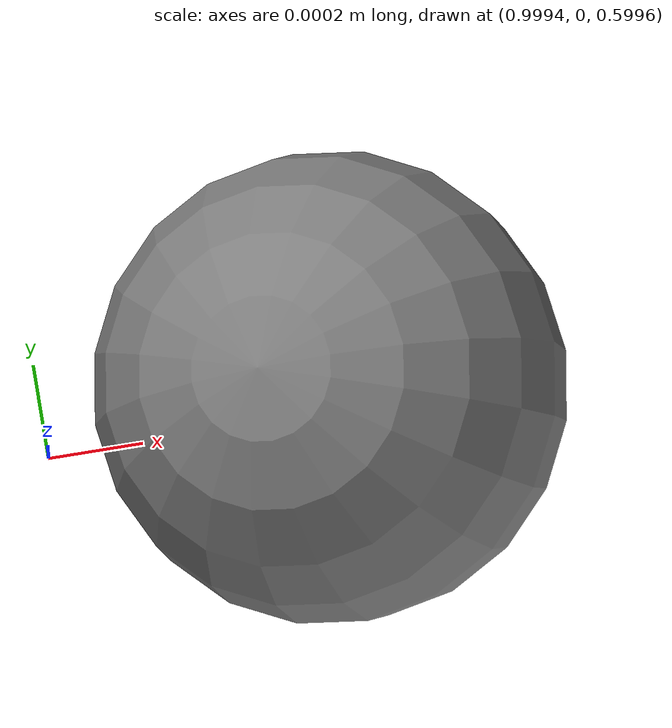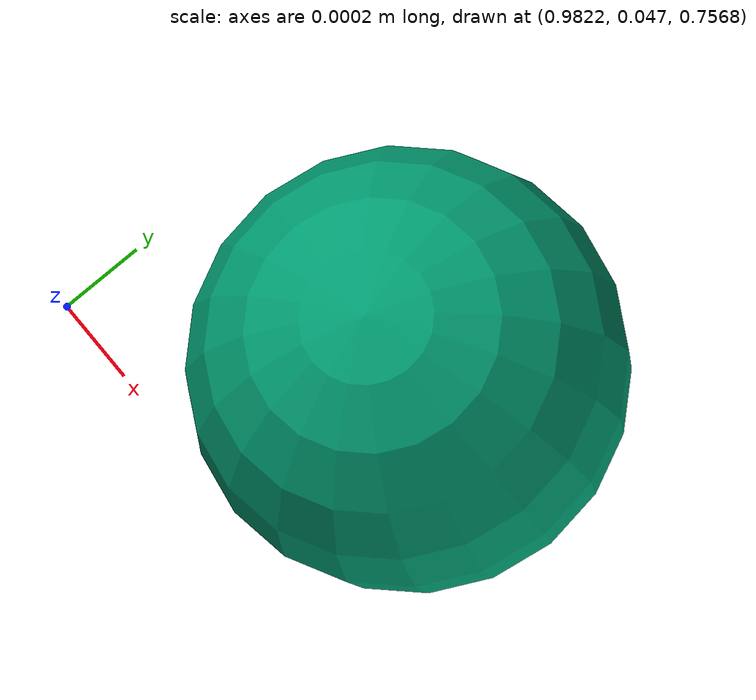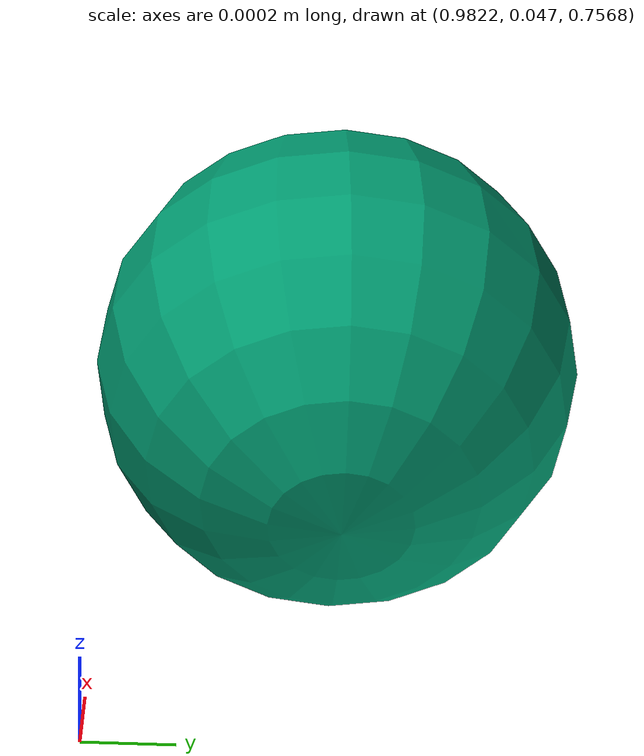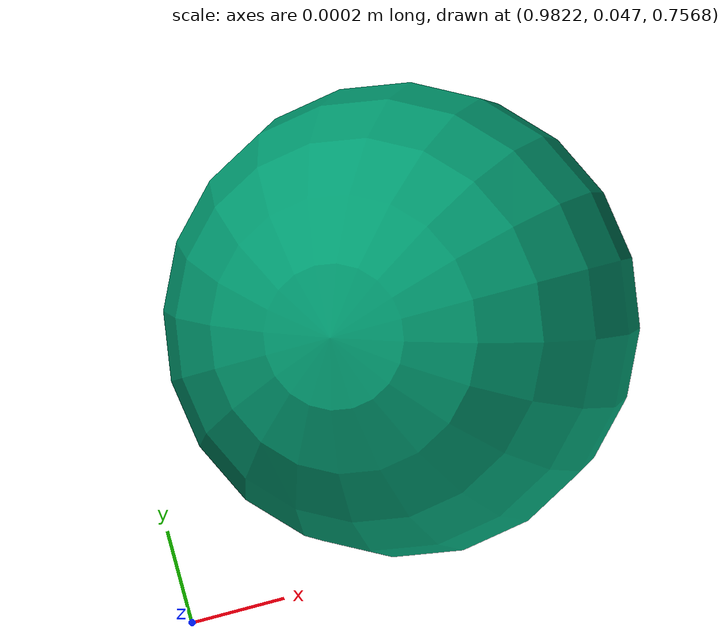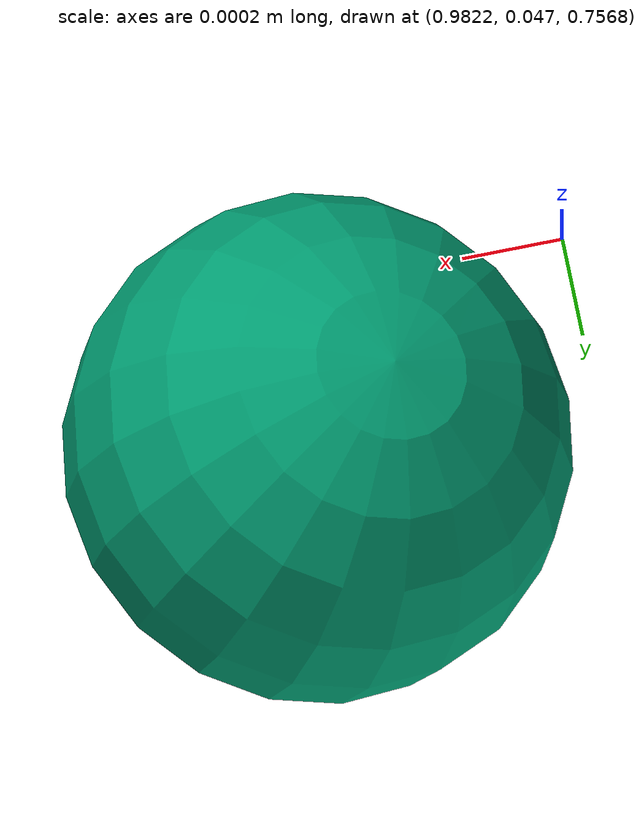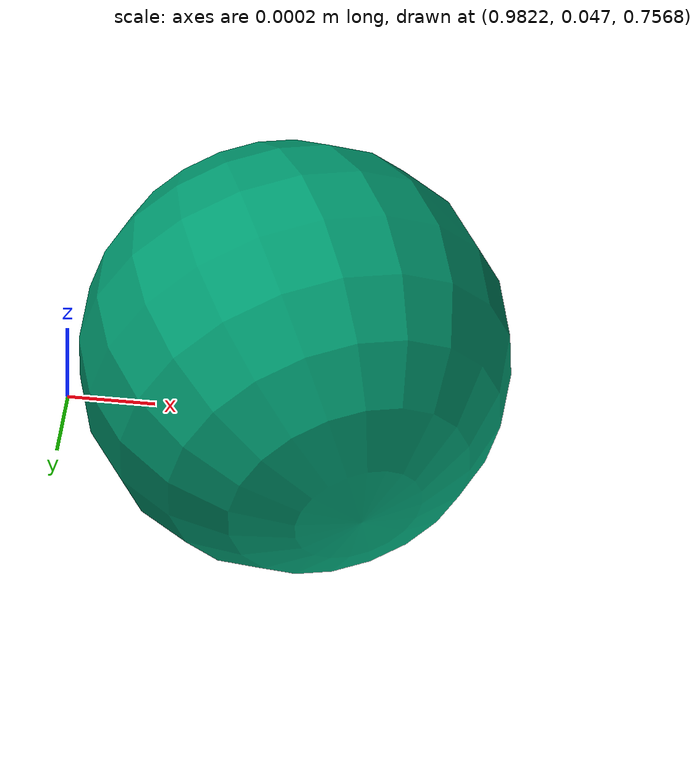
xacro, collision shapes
<?xml version="1.0"?>
<robot xmlns:xacro="http://wiki.ros.org/xacro" name="ur5" >
  <!-- include macros for UR5 and the Robotiq eef model -->
  <!--xacro:property name="M_PI" value="3.14159265359" /-->
  <xacro:property name="prefix" value="" />

  <xacro:include filename="$(find icl_ur5_setup_description)/urdf/sensors/common.xacro" />
  <xacro:include filename="$(find icl_ur5_setup_description)/urdf/sensors/kinect2.urdf.xacro" />

  <link name="world" />

  <xacro:kinect2_v0 name="" parent="world" >
    <!--origin xyz="0.4 0.0 1.2" rpy="0.0 ${pi/2} 0.0" /-->
    <origin xyz="1.0 0.0 0.6" rpy="0.0 ${pi/10} ${pi}" />
    <!--origin xyz="-1.3 1.3 1.3" rpy="0.0 ${2*pi/9} ${-1*pi/4}" /-->
    </xacro:kinect2_v0>

  <!--link name="${prefix}tool" /-->

  <!--/xacro:macro-->

  <!--xacro:ur5_with_gripper prefix=""/-->

</robot>

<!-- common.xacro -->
<robot xmlns:xacro="http://wiki.ros.org/xacro">

  <xacro:property name="M_PI" value="3.1415926535897931" />
  <xacro:property name="VELOCITY_LIMIT_SCALE" value="0.6" />

  <!-- Stereo Camera Location (Nominally 0) -->
  <xacro:property name="cal_stereo_x" value="0.0" />
  <xacro:property name="cal_stereo_y" value="0.0" />
  <xacro:property name="cal_stereo_z" value="0.0" />
  <xacro:property name="cal_stereo_roll" value="0.0" />
  <xacro:property name="cal_stereo_pitch" value="0.0" />
  <xacro:property name="cal_stereo_yaw" value="0.0" />

  <!-- Kinect Camera Location (Nominally 0) -->
  <xacro:property name="cal_kinect_x" value="0.0" />
  <xacro:property name="cal_kinect_y" value="0.0" />
  <xacro:property name="cal_kinect_z" value="0.0" />
  <xacro:property name="cal_kinect_roll" value="0.0" />
  <xacro:property name="cal_kinect_pitch" value="0.0" />
  <xacro:property name="cal_kinect_yaw" value="0.0" />

  <!-- HighDef Camera Location (Nominally 0) -->
  <xacro:property name="cal_high_def_x" value="0.0" />
  <xacro:property name="cal_high_def_y" value="0.0" />
  <xacro:property name="cal_high_def_z" value="0.0" />
  <xacro:property name="cal_high_def_roll" value="0.0" />
  <xacro:property name="cal_high_def_pitch" value="0.0" />
  <xacro:property name="cal_high_def_yaw" value="0.0" />

  <!-- Throwing in left arm constants to appease the xacro parser -->
  <xacro:property name="cal_l_shoulder_pan_flag" value="0.000000" />
  <xacro:property name="cal_l_wrist_roll_flag" value="0.0" />

</robot>

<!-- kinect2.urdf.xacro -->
<robot xmlns:xacro="http://wiki.ros.org/xacro">
  <xacro:include filename="$(find icl_ur5_setup_description)/urdf/sensors/kinect2.gazebo.xacro" />

  <!--xacro:property name="ir_depth_rgb_offset_y" value="0.01"/--> <!-- FIXME: what is this offset? -->
  <xacro:property name="ir_depth_rgb_offset_y" value="0.0"/>

  <!-- Kinect2 and mount assembly -->
  <xacro:macro name="kinect2_v0" params="name parent *origin">
    <joint name="${name}_kinect2_joint" type="fixed">
      <xacro:insert_block name="origin" />
      <parent link="${parent}"/>
      <child link="${name}_kinect2_link"/>
    </joint>
    <link name="${name}_kinect2_link">
      <inertial>
        <mass value="0.1"/>
        <origin xyz="0 0 0" rpy="0 0 0"/>
        <inertia ixx="0.01"  ixy="0.0"  ixz="0.0"
                 iyy="0.01"  iyz="0.0"
                 izz="0.01" />
      </inertial>
      <visual>
        <origin xyz="-0.102 -0.148 0" rpy="0 0 0"/>
        <geometry>
          <mesh filename="package://icl_ur5_setup_description/meshes/sensors/kinect2_v0/kinect2_assembly.dae" scale="0.001 0.001 0.001" />
        </geometry>
        <material name="gray">
          <color rgba="0.5 0.5 0.5 1"/>
        </material>
      </visual>
      <collision>
        <origin xyz="0 0 0" rpy="0 0 0"/>
        <geometry>
          <sphere radius="0.0005"/>
        </geometry>
      </collision>
    </link>

    <!-- kinect2 ir sensor physical attachment -->
    <joint name="${name}_kinect2_ir_joint" type="fixed">
      <origin xyz="-0.032267 -0.0475 0.155" rpy="0 0 0"/>
      <parent link="${name}_kinect2_link"/>
      <child link="${name}_kinect2_ir_link"/>
    </joint>
    <link name="${name}_kinect2_ir_link">
      <inertial>
        <mass value="0.1" />
        <origin xyz="0 0 0" rpy="0 0 0"/>
        <inertia ixx="0.01"  ixy="0.0"  ixz="0.0"
                 iyy="0.01"  iyz="0.0"
                 izz="0.01" />
      </inertial>
      <visual>
        <origin xyz="0.0 0.0 0" rpy="0 0 0"/>
        <geometry>
          <sphere radius="0.0005"/>
        </geometry>
      </visual>
      <collision>
        <origin xyz="0.0 0.0 0" rpy="0 0 0"/>
        <geometry>
          <sphere radius="0.0005"/>
        </geometry>
      </collision>
    </link>
    <!-- kinect2 ir sensor frame -->
    <joint name="${name}_kinect2_ir_optical_frame_joint" type="fixed">
      <origin xyz="${cal_kinect_x}                  ${cal_kinect_y+ir_depth_rgb_offset_y} ${cal_kinect_z}"
              rpy="${-M_PI/2+cal_kinect_roll}       ${0.0+cal_kinect_pitch}               ${-M_PI/2+cal_kinect_yaw}" />
      <parent link="${name}_kinect2_ir_link"/>
      <child link="${name}_kinect2_ir_optical_frame"/>
    </joint>

    <link name="${name}_kinect2_ir_optical_frame"/>
    <!-- gazebo extensions -->
    <xacro:kinect2_ir_gazebo_v0 link_name="${name}_kinect2_ir_link" frame_name="${name}_kinect2_ir_optical_frame" camera_name="head_mount_kinect2" />

    <!-- kinect2 rgb sensor physical attachment -->
    <joint name="${name}_kinect2_rgb_joint" type="fixed">
      <origin xyz="0 0 0" rpy="0 0 0"/>
      <!--origin xyz="0 -0.05175 0" rpy="0 0 0"/-->
      <parent link="${name}_kinect2_ir_link"/>
      <child link="${name}_kinect2_rgb_link"/>
    </joint>

    <link name="${name}_kinect2_rgb_link" >
      <inertial>
        <mass value="0.1" />
        <origin xyz="0 0 0" rpy="0 0 0"/>
        <inertia ixx="0.01"  ixy="0.0"  ixz="0.0"
                 iyy="0.01"  iyz="0.0"
                 izz="0.01" />
      </inertial>
      <visual>
        <origin xyz="${cal_kinect_x}            ${cal_kinect_y}                 ${cal_kinect_z}"
                rpy="${-M_PI/2+cal_kinect_roll} ${0.0+cal_kinect_pitch}         ${-M_PI/2+cal_kinect_yaw}" />
        <geometry>
          <sphere radius="0.0005"/>
        </geometry>
      </visual>
      <collision>
        <origin xyz="0.0 0.0 0" rpy="0 0 0"/>
        <geometry>
          <sphere radius="0.0005"/>
        </geometry>
      </collision>
    </link>

    <!-- kinect2 rgb sensor frame -->
    <joint name="${name}_kinect2_rgb_optical_frame_joint" type="fixed">
      <origin xyz="${cal_kinect_x}            ${cal_kinect_y}                 ${cal_kinect_z}"
              rpy="${-M_PI/2+cal_kinect_roll} ${0.0+cal_kinect_pitch}         ${-M_PI/2+cal_kinect_yaw}" />
      <parent link="${name}_kinect2_rgb_link"/>
      <child link="${name}_kinect2_rgb_optical_frame"/>
    </joint>

    <link name="${name}_kinect2_rgb_optical_frame"/>
    <!-- gazebo extensions -->
    <xacro:kinect2_rgb_gazebo_v0 link_name="${name}_kinect2_rgb_link" frame_name="${name}_kinect2_rgb_optical_frame" camera_name="head_mount_kinect2" />

  </xacro:macro>

</robot>
